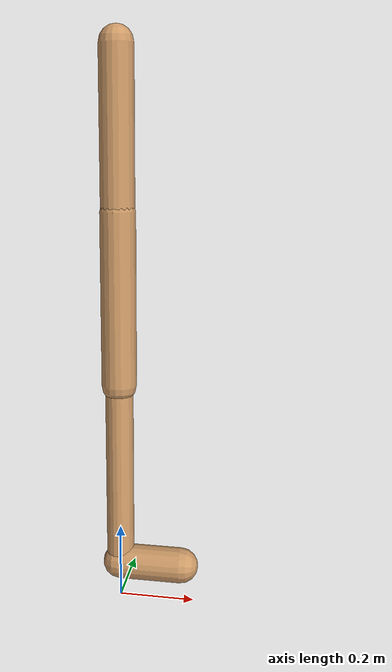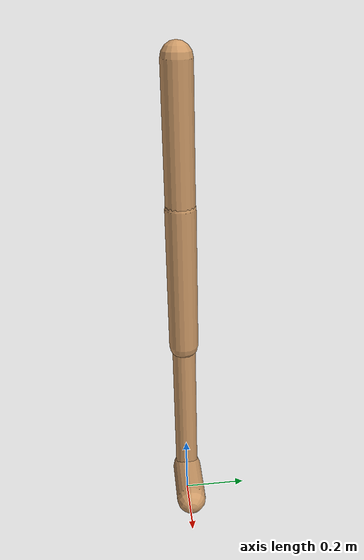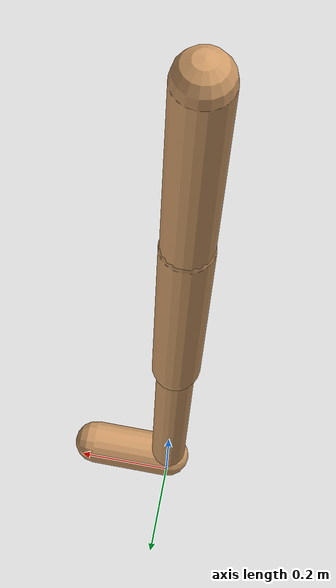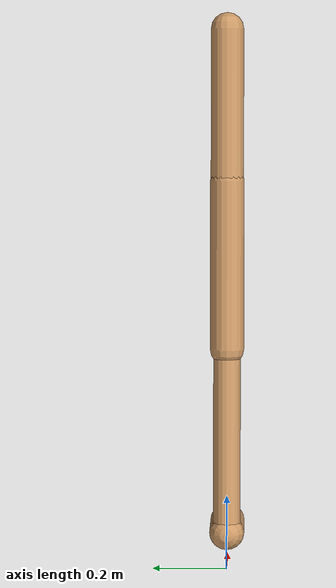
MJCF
<mujoco model="walker2d">
  <compiler angle="degree" coordinate="global" inertiafromgeom="true" />
  <default>
    <joint armature="0.01" damping=".1" limited="true" />
    <geom conaffinity="0" condim="3" contype="1" density="1000" friction="0.8 .1 .1" rgba="0.8 0.6 .4 1" />
  </default>
  <option integrator="RK4" timestep="0.002" />
  <worldbody>

    <body name="torso" pos="0 0 0.0016259090147840302">
      <joint armature="0" axis="1 0 0" damping="0" limited="false" name="ignorex" pos="0 0 0" stiffness="0" type="slide" />
      <joint armature="0" axis="0 0 1" damping="0" limited="false" name="ignorez" pos="0 0 0" ref="1.25" stiffness="0" type="slide" />
      <joint armature="0" axis="0 1 0" damping="0" limited="false" name="ignorey" pos="0 0 0" stiffness="0" type="hinge" />
      <geom fromto="0 0 1.45 0 0 1.05" name="torso_geom" size="0.043614375498365" type="capsule" />
      <body name="thigh">
        <joint axis="0 -1 0" name="thigh_joint" pos="0 0 1.05" range="-150 0" type="hinge" />
        <geom fromto="0.0 0.0 1.05 0.0 0.0 0.5992298325719444" name="thigh_geom" size="0.04546873924261838" type="capsule" />
        <body name="leg" pos="0.0 0.0 -0.0007701674280555793">
          <joint axis="0 -1 0" name="leg_joint" pos="0 0 0.6" range="-150 0" type="hinge" />
          <geom fromto="0.0 0.0 0.6 0.0 0.0 0.09914425841327157" name="leg_geom" size="0.0363749913940947" type="capsule" />
          <body name="foot" pos="0.0 0.0 -0.0008557415867284368">
            <joint axis="0 -1 0" name="foot_joint" pos="0 0 0.1" range="-45 45" type="hinge" />
            <geom fromto="0.0 0.0 0.1 0.16496157898448285 0.0 0.1" name="foot_geom" size="0.046903992838695396" type="capsule" />
          </body>
        </body>
      </body>

      <body name="thigh_left">
        <joint axis="0 -1 0" name="thigh_left_joint" pos="0 0 1.05" range="-150 0" type="hinge" />
        <geom fromto="0.0 0.0 1.05 0.0 0.0 0.5992298325719444" name="thigh_left_geom" rgba=".7 .3 .6 1" size="0.04546873924261838" type="capsule" />
        <body name="leg_left" pos="0.0 0.0 -0.0007701674280555793">
          <joint axis="0 -1 0" name="leg_left_joint" pos="0 0 0.6" range="-150 0" type="hinge" />
          <geom fromto="0.0 0.0 0.6 0.0 0.0 0.09914425841327157" name="leg_left_geom" rgba=".7 .3 .6 1" size="0.0363749913940947" type="capsule" />
          <body name="foot_left" pos="0.0 0.0 -0.0008557415867284368">
            <joint axis="0 -1 0" name="foot_left_joint" pos="0 0 0.1" range="-45 45" type="hinge" />
            <geom fromto="0.0 0.0 0.1 0.16496157898448285 0.0 0.1" name="foot_left_geom" rgba=".7 .3 .6 1" size="0.046903992838695396" type="capsule" />
          </body>
        </body>
      </body>
    </body>
  </worldbody>
  <actuator>

    <motor ctrllimited="true" ctrlrange="-1.0 1.0" gear="100" joint="thigh_joint" />
    <motor ctrllimited="true" ctrlrange="-1.0 1.0" gear="100" joint="leg_joint" />
    <motor ctrllimited="true" ctrlrange="-1.0 1.0" gear="100" joint="foot_joint" />
    <motor ctrllimited="true" ctrlrange="-1.0 1.0" gear="100" joint="thigh_left_joint" />
    <motor ctrllimited="true" ctrlrange="-1.0 1.0" gear="100" joint="leg_left_joint" />
    <motor ctrllimited="true" ctrlrange="-1.0 1.0" gear="100" joint="foot_left_joint" />

  </actuator>
</mujoco>
